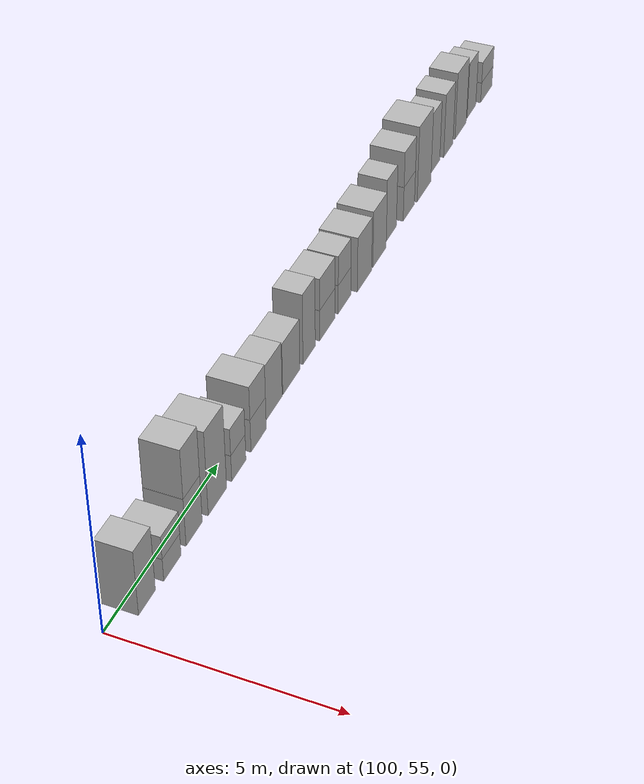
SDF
<sdf version="1.5">
 <world name="default">
  <model name="ground_plane">
   <static>true</static>
   <link name="link">
    <collision name="collision">
     <geometry><plane><normal>0 0 1</normal><size>250 250</size></plane></geometry>
     <surface><friction><ode><mu>1</mu><mu2>1</mu2></ode></friction></surface>
    </collision>
    <visual name="grass">
     <cast_shadows>false</cast_shadows>
     <geometry><mesh><uri>file://grass_plane/meshes/grass_plane.dae</uri></mesh></geometry>
    </visual>
   </link>
  </model>
  <model name="Cardboard_box_426">
   <link name="link_0">
    <pose>100 56 0 0 0 0</pose>
    <inertial>
     <mass>1</mass>
     <inertia>
      <ixx>0.166667</ixx>
      <ixy>0</ixy>
      <ixz>0</ixz>
      <iyy>0.166667</iyy>
      <iyz>0</iyz>
      <izz>0.166667</izz>
     </inertia>
    </inertial>
    <collision name="collision">
     <geometry>
      <mesh>
       <uri>model://Cardboard_box/meshes/cardboard_box.dae</uri>
       <scale>2.076910947 1.77579448435 4.29849184175</scale>
      </mesh>
     </geometry>
    </collision>
    <visual name="visual">
     <geometry>
      <mesh>
       <uri>model://Cardboard_box/meshes/cardboard_box.dae</uri>
       <scale>2.076910947 1.77579448435 4.29849184175</scale>
      </mesh>
     </geometry>
    </visual>
   </link>
   <static>1</static>
  </model>
  <model name="Cardboard_box_427">
   <link name="link_0">
    <pose>100 57 0 0 0 0</pose>
    <inertial>
     <mass>1</mass>
     <inertia>
      <ixx>0.166667</ixx>
      <ixy>0</ixy>
      <ixz>0</ixz>
      <iyy>0.166667</iyy>
      <iyz>0</iyz>
      <izz>0.166667</izz>
     </inertia>
    </inertial>
    <collision name="collision">
     <geometry>
      <mesh>
       <uri>model://Cardboard_box/meshes/cardboard_box.dae</uri>
       <scale>2.29599005699 1.89841834015 1.50292412214</scale>
      </mesh>
     </geometry>
    </collision>
    <visual name="visual">
     <geometry>
      <mesh>
       <uri>model://Cardboard_box/meshes/cardboard_box.dae</uri>
       <scale>2.29599005699 1.89841834015 1.50292412214</scale>
      </mesh>
     </geometry>
    </visual>
   </link>
   <static>1</static>
  </model>
  <model name="Cardboard_box_top_427">
   <link name="link_0">
    <pose>100 57 0.601169648858 0 0 0</pose>
    <inertial>
     <mass>1</mass>
     <inertia>
      <ixx>0.166667</ixx>
      <ixy>0</ixy>
      <ixz>0</ixz>
      <iyy>0.166667</iyy>
      <iyz>0</iyz>
      <izz>0.166667</izz>
     </inertia>
    </inertial>
    <collision name="collision">
     <geometry>
      <mesh>
       <uri>model://Cardboard_box/meshes/cardboard_box.dae</uri>
       <scale>2.29599005699 1.89841834015 1.50292412214</scale>
      </mesh>
     </geometry>
    </collision>
    <visual name="visual">
     <geometry>
      <mesh>
       <uri>model://Cardboard_box/meshes/cardboard_box.dae</uri>
       <scale>2.29599005699 1.89841834015 1.50292412214</scale>
      </mesh>
     </geometry>
    </visual>
   </link>
   <static>1</static>
  </model>
  <model name="Cardboard_box_428">
   <link name="link_0">
    <pose>100 58 0 0 0 0</pose>
    <inertial>
     <mass>1</mass>
     <inertia>
      <ixx>0.166667</ixx>
      <ixy>0</ixy>
      <ixz>0</ixz>
      <iyy>0.166667</iyy>
      <iyz>0</iyz>
      <izz>0.166667</izz>
     </inertia>
    </inertial>
    <collision name="collision">
     <geometry>
      <mesh>
       <uri>model://Cardboard_box/meshes/cardboard_box.dae</uri>
       <scale>2.20362336259 1.84591386451 3.21005567089</scale>
      </mesh>
     </geometry>
    </collision>
    <visual name="visual">
     <geometry>
      <mesh>
       <uri>model://Cardboard_box/meshes/cardboard_box.dae</uri>
       <scale>2.20362336259 1.84591386451 3.21005567089</scale>
      </mesh>
     </geometry>
    </visual>
   </link>
   <static>1</static>
  </model>
  <model name="Cardboard_box_top_428">
   <link name="link_0">
    <pose>100 58 1.28402226836 0 0 0</pose>
    <inertial>
     <mass>1</mass>
     <inertia>
      <ixx>0.166667</ixx>
      <ixy>0</ixy>
      <ixz>0</ixz>
      <iyy>0.166667</iyy>
      <iyz>0</iyz>
      <izz>0.166667</izz>
     </inertia>
    </inertial>
    <collision name="collision">
     <geometry>
      <mesh>
       <uri>model://Cardboard_box/meshes/cardboard_box.dae</uri>
       <scale>2.20362336259 1.84591386451 3.21005567089</scale>
      </mesh>
     </geometry>
    </collision>
    <visual name="visual">
     <geometry>
      <mesh>
       <uri>model://Cardboard_box/meshes/cardboard_box.dae</uri>
       <scale>2.20362336259 1.84591386451 3.21005567089</scale>
      </mesh>
     </geometry>
    </visual>
   </link>
   <static>1</static>
  </model>
  <model name="Cardboard_box_429">
   <link name="link_0">
    <pose>100 59 0 0 0 0</pose>
    <inertial>
     <mass>1</mass>
     <inertia>
      <ixx>0.166667</ixx>
      <ixy>0</ixy>
      <ixz>0</ixz>
      <iyy>0.166667</iyy>
      <iyz>0</iyz>
      <izz>0.166667</izz>
     </inertia>
    </inertial>
    <collision name="collision">
     <geometry>
      <mesh>
       <uri>model://Cardboard_box/meshes/cardboard_box.dae</uri>
       <scale>2.3836443729 2.17885697246 5.67020858853</scale>
      </mesh>
     </geometry>
    </collision>
    <visual name="visual">
     <geometry>
      <mesh>
       <uri>model://Cardboard_box/meshes/cardboard_box.dae</uri>
       <scale>2.3836443729 2.17885697246 5.67020858853</scale>
      </mesh>
     </geometry>
    </visual>
   </link>
   <static>1</static>
  </model>
  <model name="Cardboard_box_430">
   <link name="link_0">
    <pose>100 60 0 0 0 0</pose>
    <inertial>
     <mass>1</mass>
     <inertia>
      <ixx>0.166667</ixx>
      <ixy>0</ixy>
      <ixz>0</ixz>
      <iyy>0.166667</iyy>
      <iyz>0</iyz>
      <izz>0.166667</izz>
     </inertia>
    </inertial>
    <collision name="collision">
     <geometry>
      <mesh>
       <uri>model://Cardboard_box/meshes/cardboard_box.dae</uri>
       <scale>2.4496001251 1.752848052 1.7878772809</scale>
      </mesh>
     </geometry>
    </collision>
    <visual name="visual">
     <geometry>
      <mesh>
       <uri>model://Cardboard_box/meshes/cardboard_box.dae</uri>
       <scale>2.4496001251 1.752848052 1.7878772809</scale>
      </mesh>
     </geometry>
    </visual>
   </link>
   <static>1</static>
  </model>
  <model name="Cardboard_box_top_430">
   <link name="link_0">
    <pose>100 60 0.71515091236 0 0 0</pose>
    <inertial>
     <mass>1</mass>
     <inertia>
      <ixx>0.166667</ixx>
      <ixy>0</ixy>
      <ixz>0</ixz>
      <iyy>0.166667</iyy>
      <iyz>0</iyz>
      <izz>0.166667</izz>
     </inertia>
    </inertial>
    <collision name="collision">
     <geometry>
      <mesh>
       <uri>model://Cardboard_box/meshes/cardboard_box.dae</uri>
       <scale>2.4496001251 1.752848052 1.7878772809</scale>
      </mesh>
     </geometry>
    </collision>
    <visual name="visual">
     <geometry>
      <mesh>
       <uri>model://Cardboard_box/meshes/cardboard_box.dae</uri>
       <scale>2.4496001251 1.752848052 1.7878772809</scale>
      </mesh>
     </geometry>
    </visual>
   </link>
   <static>1</static>
  </model>
  <model name="Cardboard_box_431">
   <link name="link_0">
    <pose>100 61 0 0 0 0</pose>
    <inertial>
     <mass>1</mass>
     <inertia>
      <ixx>0.166667</ixx>
      <ixy>0</ixy>
      <ixz>0</ixz>
      <iyy>0.166667</iyy>
      <iyz>0</iyz>
      <izz>0.166667</izz>
     </inertia>
    </inertial>
    <collision name="collision">
     <geometry>
      <mesh>
       <uri>model://Cardboard_box/meshes/cardboard_box.dae</uri>
       <scale>2.42321825649 1.95512133184 2.23173708683</scale>
      </mesh>
     </geometry>
    </collision>
    <visual name="visual">
     <geometry>
      <mesh>
       <uri>model://Cardboard_box/meshes/cardboard_box.dae</uri>
       <scale>2.42321825649 1.95512133184 2.23173708683</scale>
      </mesh>
     </geometry>
    </visual>
   </link>
   <static>1</static>
  </model>
  <model name="Cardboard_box_top_431">
   <link name="link_0">
    <pose>100 61 0.892694834733 0 0 0</pose>
    <inertial>
     <mass>1</mass>
     <inertia>
      <ixx>0.166667</ixx>
      <ixy>0</ixy>
      <ixz>0</ixz>
      <iyy>0.166667</iyy>
      <iyz>0</iyz>
      <izz>0.166667</izz>
     </inertia>
    </inertial>
    <collision name="collision">
     <geometry>
      <mesh>
       <uri>model://Cardboard_box/meshes/cardboard_box.dae</uri>
       <scale>2.42321825649 1.95512133184 2.23173708683</scale>
      </mesh>
     </geometry>
    </collision>
    <visual name="visual">
     <geometry>
      <mesh>
       <uri>model://Cardboard_box/meshes/cardboard_box.dae</uri>
       <scale>2.42321825649 1.95512133184 2.23173708683</scale>
      </mesh>
     </geometry>
    </visual>
   </link>
   <static>1</static>
  </model>
  <model name="Cardboard_box_432">
   <link name="link_0">
    <pose>100 62 0 0 0 0</pose>
    <inertial>
     <mass>1</mass>
     <inertia>
      <ixx>0.166667</ixx>
      <ixy>0</ixy>
      <ixz>0</ixz>
      <iyy>0.166667</iyy>
      <iyz>0</iyz>
      <izz>0.166667</izz>
     </inertia>
    </inertial>
    <collision name="collision">
     <geometry>
      <mesh>
       <uri>model://Cardboard_box/meshes/cardboard_box.dae</uri>
       <scale>1.82152673913 2.48231043074 3.77621666385</scale>
      </mesh>
     </geometry>
    </collision>
    <visual name="visual">
     <geometry>
      <mesh>
       <uri>model://Cardboard_box/meshes/cardboard_box.dae</uri>
       <scale>1.82152673913 2.48231043074 3.77621666385</scale>
      </mesh>
     </geometry>
    </visual>
   </link>
   <static>1</static>
  </model>
  <model name="Cardboard_box_433">
   <link name="link_0">
    <pose>100 63 0 0 0 0</pose>
    <inertial>
     <mass>1</mass>
     <inertia>
      <ixx>0.166667</ixx>
      <ixy>0</ixy>
      <ixz>0</ixz>
      <iyy>0.166667</iyy>
      <iyz>0</iyz>
      <izz>0.166667</izz>
     </inertia>
    </inertial>
    <collision name="collision">
     <geometry>
      <mesh>
       <uri>model://Cardboard_box/meshes/cardboard_box.dae</uri>
       <scale>1.79857161926 2.34454703748 3.56892925341</scale>
      </mesh>
     </geometry>
    </collision>
    <visual name="visual">
     <geometry>
      <mesh>
       <uri>model://Cardboard_box/meshes/cardboard_box.dae</uri>
       <scale>1.79857161926 2.34454703748 3.56892925341</scale>
      </mesh>
     </geometry>
    </visual>
   </link>
   <static>1</static>
  </model>
  <model name="Cardboard_box_434">
   <link name="link_0">
    <pose>100 64 0 0 0 0</pose>
    <inertial>
     <mass>1</mass>
     <inertia>
      <ixx>0.166667</ixx>
      <ixy>0</ixy>
      <ixz>0</ixz>
      <iyy>0.166667</iyy>
      <iyz>0</iyz>
      <izz>0.166667</izz>
     </inertia>
    </inertial>
    <collision name="collision">
     <geometry>
      <mesh>
       <uri>model://Cardboard_box/meshes/cardboard_box.dae</uri>
       <scale>1.77374515129 1.74864046951 4.88459785097</scale>
      </mesh>
     </geometry>
    </collision>
    <visual name="visual">
     <geometry>
      <mesh>
       <uri>model://Cardboard_box/meshes/cardboard_box.dae</uri>
       <scale>1.77374515129 1.74864046951 4.88459785097</scale>
      </mesh>
     </geometry>
    </visual>
   </link>
   <static>1</static>
  </model>
  <model name="Cardboard_box_435">
   <link name="link_0">
    <pose>100 65 0 0 0 0</pose>
    <inertial>
     <mass>1</mass>
     <inertia>
      <ixx>0.166667</ixx>
      <ixy>0</ixy>
      <ixz>0</ixz>
      <iyy>0.166667</iyy>
      <iyz>0</iyz>
      <izz>0.166667</izz>
     </inertia>
    </inertial>
    <collision name="collision">
     <geometry>
      <mesh>
       <uri>model://Cardboard_box/meshes/cardboard_box.dae</uri>
       <scale>1.88981177462 2.25854232393 2.17907380957</scale>
      </mesh>
     </geometry>
    </collision>
    <visual name="visual">
     <geometry>
      <mesh>
       <uri>model://Cardboard_box/meshes/cardboard_box.dae</uri>
       <scale>1.88981177462 2.25854232393 2.17907380957</scale>
      </mesh>
     </geometry>
    </visual>
   </link>
   <static>1</static>
  </model>
  <model name="Cardboard_box_top_435">
   <link name="link_0">
    <pose>100 65 0.871629523827 0 0 0</pose>
    <inertial>
     <mass>1</mass>
     <inertia>
      <ixx>0.166667</ixx>
      <ixy>0</ixy>
      <ixz>0</ixz>
      <iyy>0.166667</iyy>
      <iyz>0</iyz>
      <izz>0.166667</izz>
     </inertia>
    </inertial>
    <collision name="collision">
     <geometry>
      <mesh>
       <uri>model://Cardboard_box/meshes/cardboard_box.dae</uri>
       <scale>1.88981177462 2.25854232393 2.17907380957</scale>
      </mesh>
     </geometry>
    </collision>
    <visual name="visual">
     <geometry>
      <mesh>
       <uri>model://Cardboard_box/meshes/cardboard_box.dae</uri>
       <scale>1.88981177462 2.25854232393 2.17907380957</scale>
      </mesh>
     </geometry>
    </visual>
   </link>
   <static>1</static>
  </model>
  <model name="Cardboard_box_436">
   <link name="link_0">
    <pose>100 66 0 0 0 0</pose>
    <inertial>
     <mass>1</mass>
     <inertia>
      <ixx>0.166667</ixx>
      <ixy>0</ixy>
      <ixz>0</ixz>
      <iyy>0.166667</iyy>
      <iyz>0</iyz>
      <izz>0.166667</izz>
     </inertia>
    </inertial>
    <collision name="collision">
     <geometry>
      <mesh>
       <uri>model://Cardboard_box/meshes/cardboard_box.dae</uri>
       <scale>1.92164981308 1.92832838902 2.04513823815</scale>
      </mesh>
     </geometry>
    </collision>
    <visual name="visual">
     <geometry>
      <mesh>
       <uri>model://Cardboard_box/meshes/cardboard_box.dae</uri>
       <scale>1.92164981308 1.92832838902 2.04513823815</scale>
      </mesh>
     </geometry>
    </visual>
   </link>
   <static>1</static>
  </model>
  <model name="Cardboard_box_top_436">
   <link name="link_0">
    <pose>100 66 0.818055295261 0 0 0</pose>
    <inertial>
     <mass>1</mass>
     <inertia>
      <ixx>0.166667</ixx>
      <ixy>0</ixy>
      <ixz>0</ixz>
      <iyy>0.166667</iyy>
      <iyz>0</iyz>
      <izz>0.166667</izz>
     </inertia>
    </inertial>
    <collision name="collision">
     <geometry>
      <mesh>
       <uri>model://Cardboard_box/meshes/cardboard_box.dae</uri>
       <scale>1.92164981308 1.92832838902 2.04513823815</scale>
      </mesh>
     </geometry>
    </collision>
    <visual name="visual">
     <geometry>
      <mesh>
       <uri>model://Cardboard_box/meshes/cardboard_box.dae</uri>
       <scale>1.92164981308 1.92832838902 2.04513823815</scale>
      </mesh>
     </geometry>
    </visual>
   </link>
   <static>1</static>
  </model>
  <model name="Cardboard_box_437">
   <link name="link_0">
    <pose>100 67 0 0 0 0</pose>
    <inertial>
     <mass>1</mass>
     <inertia>
      <ixx>0.166667</ixx>
      <ixy>0</ixy>
      <ixz>0</ixz>
      <iyy>0.166667</iyy>
      <iyz>0</iyz>
      <izz>0.166667</izz>
     </inertia>
    </inertial>
    <collision name="collision">
     <geometry>
      <mesh>
       <uri>model://Cardboard_box/meshes/cardboard_box.dae</uri>
       <scale>2.40748018403 2.26914861518 3.8824744779</scale>
      </mesh>
     </geometry>
    </collision>
    <visual name="visual">
     <geometry>
      <mesh>
       <uri>model://Cardboard_box/meshes/cardboard_box.dae</uri>
       <scale>2.40748018403 2.26914861518 3.8824744779</scale>
      </mesh>
     </geometry>
    </visual>
   </link>
   <static>1</static>
  </model>
  <model name="Cardboard_box_438">
   <link name="link_0">
    <pose>100 68 0 0 0 0</pose>
    <inertial>
     <mass>1</mass>
     <inertia>
      <ixx>0.166667</ixx>
      <ixy>0</ixy>
      <ixz>0</ixz>
      <iyy>0.166667</iyy>
      <iyz>0</iyz>
      <izz>0.166667</izz>
     </inertia>
    </inertial>
    <collision name="collision">
     <geometry>
      <mesh>
       <uri>model://Cardboard_box/meshes/cardboard_box.dae</uri>
       <scale>2.32923668931 2.1834284555 4.04118234173</scale>
      </mesh>
     </geometry>
    </collision>
    <visual name="visual">
     <geometry>
      <mesh>
       <uri>model://Cardboard_box/meshes/cardboard_box.dae</uri>
       <scale>2.32923668931 2.1834284555 4.04118234173</scale>
      </mesh>
     </geometry>
    </visual>
   </link>
   <static>1</static>
  </model>
  <model name="Cardboard_box_439">
   <link name="link_0">
    <pose>100 69 0 0 0 0</pose>
    <inertial>
     <mass>1</mass>
     <inertia>
      <ixx>0.166667</ixx>
      <ixy>0</ixy>
      <ixz>0</ixz>
      <iyy>0.166667</iyy>
      <iyz>0</iyz>
      <izz>0.166667</izz>
     </inertia>
    </inertial>
    <collision name="collision">
     <geometry>
      <mesh>
       <uri>model://Cardboard_box/meshes/cardboard_box.dae</uri>
       <scale>1.88685833299 1.73832389222 4.49631564483</scale>
      </mesh>
     </geometry>
    </collision>
    <visual name="visual">
     <geometry>
      <mesh>
       <uri>model://Cardboard_box/meshes/cardboard_box.dae</uri>
       <scale>1.88685833299 1.73832389222 4.49631564483</scale>
      </mesh>
     </geometry>
    </visual>
   </link>
   <static>1</static>
  </model>
  <model name="Cardboard_box_440">
   <link name="link_0">
    <pose>100 70 0 0 0 0</pose>
    <inertial>
     <mass>1</mass>
     <inertia>
      <ixx>0.166667</ixx>
      <ixy>0</ixy>
      <ixz>0</ixz>
      <iyy>0.166667</iyy>
      <iyz>0</iyz>
      <izz>0.166667</izz>
     </inertia>
    </inertial>
    <collision name="collision">
     <geometry>
      <mesh>
       <uri>model://Cardboard_box/meshes/cardboard_box.dae</uri>
       <scale>2.27514372588 1.96817794093 2.50926763468</scale>
      </mesh>
     </geometry>
    </collision>
    <visual name="visual">
     <geometry>
      <mesh>
       <uri>model://Cardboard_box/meshes/cardboard_box.dae</uri>
       <scale>2.27514372588 1.96817794093 2.50926763468</scale>
      </mesh>
     </geometry>
    </visual>
   </link>
   <static>1</static>
  </model>
  <model name="Cardboard_box_top_440">
   <link name="link_0">
    <pose>100 70 1.00370705387 0 0 0</pose>
    <inertial>
     <mass>1</mass>
     <inertia>
      <ixx>0.166667</ixx>
      <ixy>0</ixy>
      <ixz>0</ixz>
      <iyy>0.166667</iyy>
      <iyz>0</iyz>
      <izz>0.166667</izz>
     </inertia>
    </inertial>
    <collision name="collision">
     <geometry>
      <mesh>
       <uri>model://Cardboard_box/meshes/cardboard_box.dae</uri>
       <scale>2.27514372588 1.96817794093 2.50926763468</scale>
      </mesh>
     </geometry>
    </collision>
    <visual name="visual">
     <geometry>
      <mesh>
       <uri>model://Cardboard_box/meshes/cardboard_box.dae</uri>
       <scale>2.27514372588 1.96817794093 2.50926763468</scale>
      </mesh>
     </geometry>
    </visual>
   </link>
   <static>1</static>
  </model>
  <model name="Cardboard_box_441">
   <link name="link_0">
    <pose>100 71 0 0 0 0</pose>
    <inertial>
     <mass>1</mass>
     <inertia>
      <ixx>0.166667</ixx>
      <ixy>0</ixy>
      <ixz>0</ixz>
      <iyy>0.166667</iyy>
      <iyz>0</iyz>
      <izz>0.166667</izz>
     </inertia>
    </inertial>
    <collision name="collision">
     <geometry>
      <mesh>
       <uri>model://Cardboard_box/meshes/cardboard_box.dae</uri>
       <scale>2.41803571038 2.47346593866 5.52382244785</scale>
      </mesh>
     </geometry>
    </collision>
    <visual name="visual">
     <geometry>
      <mesh>
       <uri>model://Cardboard_box/meshes/cardboard_box.dae</uri>
       <scale>2.41803571038 2.47346593866 5.52382244785</scale>
      </mesh>
     </geometry>
    </visual>
   </link>
   <static>1</static>
  </model>
  <model name="Cardboard_box_442">
   <link name="link_0">
    <pose>100 72 0 0 0 0</pose>
    <inertial>
     <mass>1</mass>
     <inertia>
      <ixx>0.166667</ixx>
      <ixy>0</ixy>
      <ixz>0</ixz>
      <iyy>0.166667</iyy>
      <iyz>0</iyz>
      <izz>0.166667</izz>
     </inertia>
    </inertial>
    <collision name="collision">
     <geometry>
      <mesh>
       <uri>model://Cardboard_box/meshes/cardboard_box.dae</uri>
       <scale>1.80392334526 2.436625109 4.46134238516</scale>
      </mesh>
     </geometry>
    </collision>
    <visual name="visual">
     <geometry>
      <mesh>
       <uri>model://Cardboard_box/meshes/cardboard_box.dae</uri>
       <scale>1.80392334526 2.436625109 4.46134238516</scale>
      </mesh>
     </geometry>
    </visual>
   </link>
   <static>1</static>
  </model>
  <model name="Cardboard_box_443">
   <link name="link_0">
    <pose>100 73 0 0 0 0</pose>
    <inertial>
     <mass>1</mass>
     <inertia>
      <ixx>0.166667</ixx>
      <ixy>0</ixy>
      <ixz>0</ixz>
      <iyy>0.166667</iyy>
      <iyz>0</iyz>
      <izz>0.166667</izz>
     </inertia>
    </inertial>
    <collision name="collision">
     <geometry>
      <mesh>
       <uri>model://Cardboard_box/meshes/cardboard_box.dae</uri>
       <scale>2.04340874685 1.77567516577 4.70277643071</scale>
      </mesh>
     </geometry>
    </collision>
    <visual name="visual">
     <geometry>
      <mesh>
       <uri>model://Cardboard_box/meshes/cardboard_box.dae</uri>
       <scale>2.04340874685 1.77567516577 4.70277643071</scale>
      </mesh>
     </geometry>
    </visual>
   </link>
   <static>1</static>
  </model>
  <model name="Cardboard_box_444">
   <link name="link_0">
    <pose>100 74 0 0 0 0</pose>
    <inertial>
     <mass>1</mass>
     <inertia>
      <ixx>0.166667</ixx>
      <ixy>0</ixy>
      <ixz>0</ixz>
      <iyy>0.166667</iyy>
      <iyz>0</iyz>
      <izz>0.166667</izz>
     </inertia>
    </inertial>
    <collision name="collision">
     <geometry>
      <mesh>
       <uri>model://Cardboard_box/meshes/cardboard_box.dae</uri>
       <scale>1.95927949733 2.21794797026 4.989196109</scale>
      </mesh>
     </geometry>
    </collision>
    <visual name="visual">
     <geometry>
      <mesh>
       <uri>model://Cardboard_box/meshes/cardboard_box.dae</uri>
       <scale>1.95927949733 2.21794797026 4.989196109</scale>
      </mesh>
     </geometry>
    </visual>
   </link>
   <static>1</static>
  </model>
  <model name="Cardboard_box_445">
   <link name="link_0">
    <pose>100 75 0 0 0 0</pose>
    <inertial>
     <mass>1</mass>
     <inertia>
      <ixx>0.166667</ixx>
      <ixy>0</ixy>
      <ixz>0</ixz>
      <iyy>0.166667</iyy>
      <iyz>0</iyz>
      <izz>0.166667</izz>
     </inertia>
    </inertial>
    <collision name="collision">
     <geometry>
      <mesh>
       <uri>model://Cardboard_box/meshes/cardboard_box.dae</uri>
       <scale>1.70855266661 1.76803686719 4.17737921944</scale>
      </mesh>
     </geometry>
    </collision>
    <visual name="visual">
     <geometry>
      <mesh>
       <uri>model://Cardboard_box/meshes/cardboard_box.dae</uri>
       <scale>1.70855266661 1.76803686719 4.17737921944</scale>
      </mesh>
     </geometry>
    </visual>
   </link>
   <static>1</static>
  </model>
  <model name="Cardboard_box_446">
   <link name="link_0">
    <pose>100 76 0 0 0 0</pose>
    <inertial>
     <mass>1</mass>
     <inertia>
      <ixx>0.166667</ixx>
      <ixy>0</ixy>
      <ixz>0</ixz>
      <iyy>0.166667</iyy>
      <iyz>0</iyz>
      <izz>0.166667</izz>
     </inertia>
    </inertial>
    <collision name="collision">
     <geometry>
      <mesh>
       <uri>model://Cardboard_box/meshes/cardboard_box.dae</uri>
       <scale>2.09822485348 2.36142047234 1.54479995004</scale>
      </mesh>
     </geometry>
    </collision>
    <visual name="visual">
     <geometry>
      <mesh>
       <uri>model://Cardboard_box/meshes/cardboard_box.dae</uri>
       <scale>2.09822485348 2.36142047234 1.54479995004</scale>
      </mesh>
     </geometry>
    </visual>
   </link>
   <static>1</static>
  </model>
  <model name="Cardboard_box_top_446">
   <link name="link_0">
    <pose>100 76 0.617919980017 0 0 0</pose>
    <inertial>
     <mass>1</mass>
     <inertia>
      <ixx>0.166667</ixx>
      <ixy>0</ixy>
      <ixz>0</ixz>
      <iyy>0.166667</iyy>
      <iyz>0</iyz>
      <izz>0.166667</izz>
     </inertia>
    </inertial>
    <collision name="collision">
     <geometry>
      <mesh>
       <uri>model://Cardboard_box/meshes/cardboard_box.dae</uri>
       <scale>2.09822485348 2.36142047234 1.54479995004</scale>
      </mesh>
     </geometry>
    </collision>
    <visual name="visual">
     <geometry>
      <mesh>
       <uri>model://Cardboard_box/meshes/cardboard_box.dae</uri>
       <scale>2.09822485348 2.36142047234 1.54479995004</scale>
      </mesh>
     </geometry>
    </visual>
   </link>
   <static>1</static>
  </model>
 </world>
</sdf>
